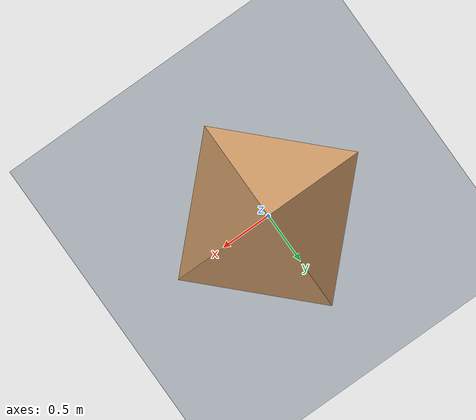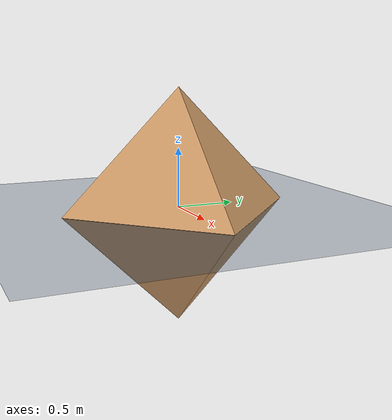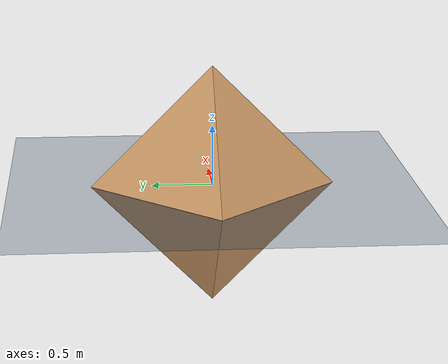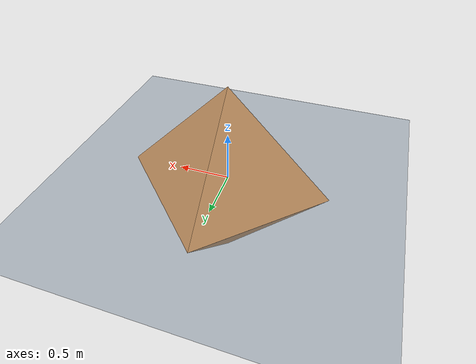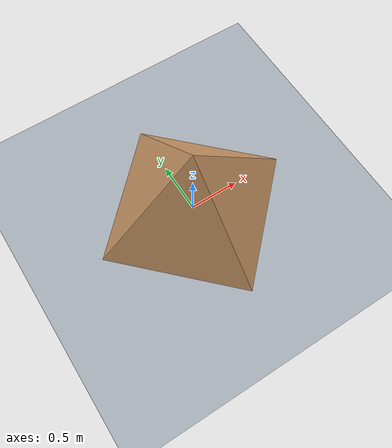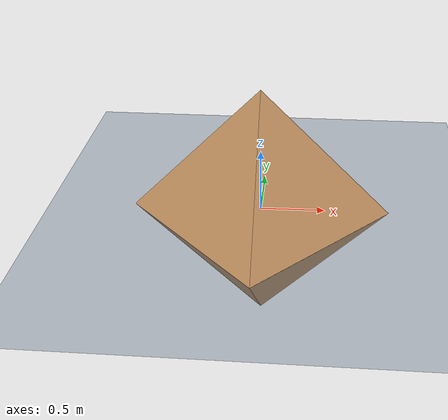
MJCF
<mujoco model="initial_humanoid">
  <!-- SET GRAVITY TO POINT DOWN -->
  <option gravity="0 0 -9.81">
  </option>

  <!-- VISUAL SETUP STUFF THAT I DON'T FULLY UNDERSTAND YET -->
  <visual>
    <map zfar="30"/>
    <rgba haze="0.15 0.25 0.35 1" />
  </visual>

  <!-- DON'T KNOW WHAT THIS DOES YET -->
  <statistic center="0 0 0.7"/>

  <!-- NOT SURE EXACTLY WHAT THIS STUFF DOES, BUT IT SETS UP THE CAMERA AND FLOOR -->
  <asset>
  <!-- this makes the sky blue in the simulation: -->
    <texture type="skybox" builtin="gradient" rgb1=".3 .5 .7" rgb2="0 0 0" width="32" height="512"/>

    <!-- configure the texture and material of the default body created in a simulation -->
    <texture name="body" type="cube" builtin="flat" mark="cross" width="128" height="128" rgb1="0.8 0.6 0.4" rgb2="0.8 0.6 0.4" markrgb="1 1 1" random="0.01"/>
    <!-- the material references the texture -->
    <material name="body" texture="body" texuniform="true" rgba="0.8 0.6 .4 1"/>

     <!-- configure the default texture and material for the ground of the simulation -->
    <texture name="grid" type="2d" builtin="checker" width="512" height="512" rgb1=".1 .2 .3" rgb2=".2 .3 .4"/>
    <!-- the material references the texture -->
    <material name="grid" texture="grid" texrepeat="1 1" texuniform="true" reflectance=".2"/>

    <mesh name="foot_mesh" vertex="-1 0 0  1 0 0  0 -1 0  0 1 0  0 0 1  0 0 -1"/>

    <!-- Add new materials for exoskeleton components -->
    <material name="exo_metal" rgba="0.7 0.7 0.7 1" shininess="0.8" specular="0.5"/>
    <material name="exo_blue" rgba="0.1 0.3 0.7 1" shininess="0.3" specular="0.3"/>
    <material name="exo_straps" rgba="0.3 0.3 0.3 1" shininess="0.1" specular="0.1"/>

  </asset>

  <!-- SECTION TO DEFINE GEOMETRIES AND JOINTS -->
  <default>

    <default class="general_geom">
      <motor ctrlrange="-0.5 0.5" ctrllimited="true"/>
      <!-- geoms -->
      <!-- ALL DEFAULT GEOMETRIES ARE CAPSULE TYPE -->
      <geom material="body" type="capsule" condim="1" friction="0.99 0.99 0.99" solimp=".9 .99 .003" group="1"/>

      <!-- SHIN GEOMETRY -->
      <default class="long_link">
        <geom fromto="0 0 0.1 0 0 0" size = "0.025"/>
      </default>

    </default>
  </default>

    <!-- DEFINE THE LEG, STARTING FROM THE WORLDBODY FRAME? -->
	<worldbody>
      <!-- DEFINE THE FLOOR IN THE ENVIRONMENT -->
      <geom name="ground" size="0 0 .05" friction='0.99 0.99 0.99' type="plane" material="grid" condim="3" solimp=".9 .99 .003" />

      <!-- LIGHT SETTING -->
      <light name="spotlight" mode="targetbodycom" target="foot" diffuse=".8 .8 .8" specular="0.3 0.3 0.3" pos="0 -6 4" cutoff="30"/>

        <!-- BODY FOR FOOT; CAN HAVE MAX 6-DOF -->
        <body name="foot" >
          <!-- Create prismatic joints to constrain motion along the x and z directions -->
          <joint type="hinge" name="rotation_dof" axis="0 1 0"/>
          <joint type="slide" name="joint_slide_x" axis="1 0 0"/>
          <joint type="slide" name="joint_slide_z" axis="0 0 1"/>

          <site name="front_foot_site" type="cylinder" size="0.075" rgba="0.5 0.5 0.5 0"/>
          <site name="back_foot_site" type="cylinder" size="0.075" rgba="0.5 0.5 0.5 0"/>

          <geom type="mesh" mesh="foot_mesh" name="foot_geom" friction=".99 .99 .99" rgba="0.8 0.6 0.4 1"/>

          <!-- Heel plate where exoskeleton attaches -->
          <geom name="exo_heel_attachment" type="box" size="0.02 0.025 0.005" pos="-0.1 0 0.005"
                material="exo_metal" contype="0" conaffinity="0"/>

            <body name="long_link_body">

            <!-- Create a hinge joint to constrain rotation around the y-axis -->
              <joint type="hinge" name="ankle_hinge" axis="0 1 0" damping="2.5"/>
              <geom name="long_link_geom" class="long_link" solref="0.015 1" solimp=".99 .99 .001"/>
              <geom name="m_body" type="sphere" size="0.05"/>

              <!-- Exoskeleton components -->
              <!-- Main actuator housing -->
              <geom name="exo_housing" type="box" size="0.025 0.03 0.04" pos="-0.03 0 0.08"
                    material="exo_blue" contype="0" conaffinity="0"/>

              <!-- Connecting rod -->
              <geom name="exo_connecting_rod" type="capsule" fromto="-0.03 0 0.05 -0.03 0 -0.025" size="0.005"
                    material="exo_metal" contype="0" conaffinity="0"/>

              <!-- Ball joint at top of rod -->
              <geom name="exo_joint_upper" type="sphere" size="0.007" pos="-0.03 0 0.05"
                    material="exo_metal" contype="0" conaffinity="0"/>

              <!-- Ball joint at bottom of rod -->
              <geom name="exo_joint_lower" type="sphere" size="0.007" pos="-0.03 0 -0.025"
                    material="exo_metal" contype="0" conaffinity="0"/>

              <!-- NEW: Calf bandage/strap to fix the motor -->
              <!-- Left side of strap -->
              <geom name="exo_calf_strap_left" type="capsule" fromto="-0.03 -0.02 0.08 0.03 -0.02 0.08" size="0.008"
                    material="exo_straps" contype="0" conaffinity="0"/>

              <!-- Right side of strap -->
              <geom name="exo_calf_strap_right" type="capsule" fromto="-0.03 0.02 0.08 0.03 0.02 0.08" size="0.008"
                    material="exo_straps" contype="0" conaffinity="0"/>

              <!-- Top connecting strap -->
              <geom name="exo_calf_strap_top" type="capsule" fromto="0.03 -0.02 0.08 0.03 0.02 0.08" size="0.008"
                    material="exo_straps" contype="0" conaffinity="0"/>

              <body name="upper_body">
                  <joint type="hinge" name="hip_hinge" axis="0 1 0" damping="2.5"/>
                  <geom name="upper_body_geom" type="capsule" fromto="0 0 0 0 0 0.5" size="0.025"
                        solref="0.015 1" solimp=".99 .99 .001"/>
                  <geom name="upper_body_com" type="sphere" size="0.05" pos="0 0 0.25"/>
              </body>

            </body>

        </body>
	</worldbody>

  <contact>
    <pair name="foot_ground_friction" geom1="foot_geom" geom2="ground" solref="0.015 1" solimp="0.99 .99 .003" friction=".99 .99 .99"/>
    <pair name="longlink_ground_friction" geom1="long_link_geom" geom2="ground" solref="0.015 1" solimp="0.99 .99 .003" friction=".99 .99 .99"/>
  </contact>

    <!-- ACTUATORS FOR THE ANKLE JOINTS -->
	<actuator>
      <motor joint="ankle_hinge" name="human_ankle_actuator" gear="1" ctrlrange="-150 150" ctrllimited="true"/>
      <motor joint="ankle_hinge" name="exo_ankle_actuator" gear="1" ctrlrange="-50 50" ctrllimited="true"/>
      <motor joint="hip_hinge" name="hip_actuator" gear="1" ctrlrange="-150 150" ctrllimited="true"/>
	</actuator>

    <!-- SENSORS FOR THE ANKLE JOINTS -->
	<sensor>
      <jointpos joint='ankle_hinge'/>
      <touch site='front_foot_site'/>
      <touch site='back_foot_site'/>
      <jointpos joint='hip_hinge'/>
      <jointvel joint='hip_hinge'/>
      <actuatorfrc actuator='hip_actuator'/>
	</sensor>

</mujoco>
